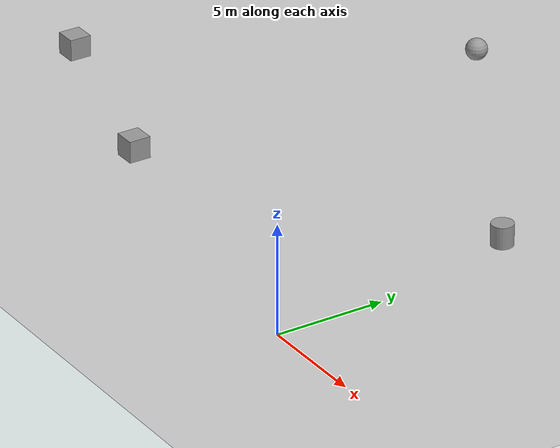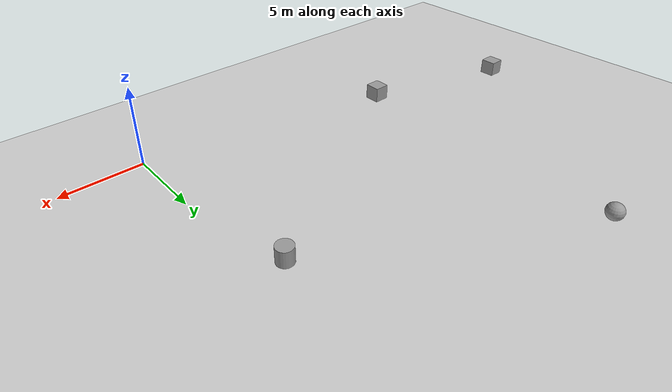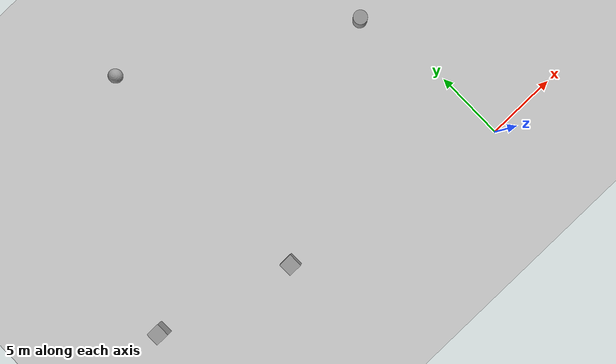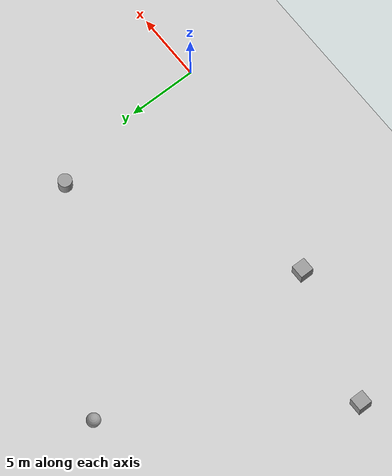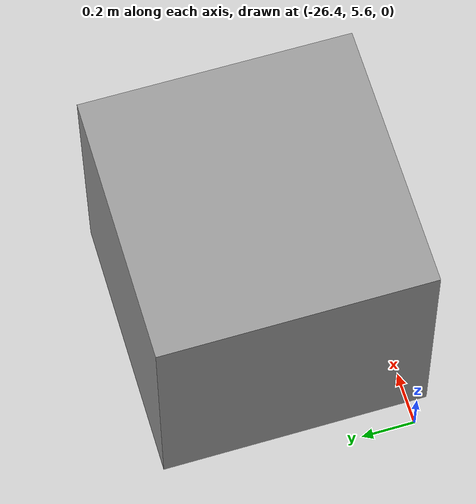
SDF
<sdf version="1.6">
 <world name="default">
  <light name="sun" type="directional">
   <pose>0 0 10 0 -0 0</pose>
   <diffuse>0.8 0.8 0.8 1</diffuse>
   <specular>0.2 0.2 0.2 1</specular>
   <attenuation>
    <range>1000</range>
    <constant>0.9</constant>
    <linear>0.01</linear>
    <quadratic>0.001</quadratic>
   </attenuation>
   <direction>-0.5 0.1 -0.9</direction>
  </light>
  <model name="ground_plane">
   <static>1</static>
   <link name="link">
    <collision name="collision">
     <geometry><plane><normal>0 0 1</normal><size>100 100</size></plane></geometry>
     <surface><friction><ode><mu>100</mu><mu2>50</mu2></ode></friction></surface>
    </collision>
    <visual name="visual">
     <cast_shadows>0</cast_shadows>
     <geometry><plane><normal>0 0 1</normal><size>100 100</size></plane></geometry>
     <material>
      <script><uri>file://media/materials/scripts/gazebo.material</uri><name>Gazebo/Grey</name></script>
     </material>
    </visual>
   </link>
  </model>
  <gravity>0 0 -9.8</gravity>
  <magnetic_field>6e-06 2.3e-05 -4.2e-05</magnetic_field>
  <atmosphere type="adiabatic"/>
  <physics name="default_physics" default="0" type="ode">
   <max_step_size>0.001</max_step_size>
   <real_time_factor>1</real_time_factor>
   <real_time_update_rate>1000</real_time_update_rate>
  </physics>
  <scene><ambient>0.4 0.4 0.4 1</ambient><background>0.7 0.7 0.7 1</background><shadows>1</shadows></scene>
  <spherical_coordinates>
   <surface_model>EARTH_WGS84</surface_model>
   <latitude_deg>0</latitude_deg>
   <longitude_deg>0</longitude_deg>
   <elevation>0</elevation>
   <heading_deg>0</heading_deg>
  </spherical_coordinates>
  <model name="unit_box">
   <pose>-25.8152 6.02644 0.499995 0 1e-05 0</pose>
   <link name="link">
    <inertial>
     <mass>1</mass>
     <inertia>
      <ixx>0.166667</ixx>
      <ixy>0</ixy>
      <ixz>0</ixz>
      <iyy>0.166667</iyy>
      <iyz>0</iyz>
      <izz>0.166667</izz>
     </inertia>
    </inertial>
    <collision name="collision"><geometry><box><size>1 1 1</size></box></geometry></collision>
    <visual name="visual">
     <geometry><box><size>1 1 1</size></box></geometry>
     <material>
      <script><name>Gazebo/Grey</name><uri>file://media/materials/scripts/gazebo.material</uri></script>
     </material>
    </visual>
   </link>
  </model>
  <model name="unit_box_0">
   <pose>-16.2269 3.20852 0.499995 -1e-05 0 0</pose>
   <link name="link">
    <inertial>
     <mass>1</mass>
     <inertia>
      <ixx>0.166667</ixx>
      <ixy>0</ixy>
      <ixz>0</ixz>
      <iyy>0.166667</iyy>
      <iyz>0</iyz>
      <izz>0.166667</izz>
     </inertia>
    </inertial>
    <collision name="collision"><geometry><box><size>1 1 1</size></box></geometry></collision>
    <visual name="visual">
     <geometry><box><size>1 1 1</size></box></geometry>
     <material>
      <script><name>Gazebo/Grey</name><uri>file://media/materials/scripts/gazebo.material</uri></script>
     </material>
    </visual>
   </link>
  </model>
  <model name="unit_sphere">
   <pose>-15.9072 20.5568 0.5 0 -0 0</pose>
   <link name="link">
    <inertial>
     <mass>1</mass>
     <inertia><ixx>0.1</ixx><ixy>0</ixy><ixz>0</ixz><iyy>0.1</iyy><iyz>0</iyz><izz>0.1</izz></inertia>
    </inertial>
    <collision name="collision"><geometry><sphere><radius>0.5</radius></sphere></geometry></collision>
    <visual name="visual">
     <geometry><sphere><radius>0.5</radius></sphere></geometry>
     <material>
      <script><name>Gazebo/Grey</name><uri>file://media/materials/scripts/gazebo.material</uri></script>
     </material>
    </visual>
   </link>
  </model>
  <model name="unit_cylinder">
   <pose>-1.3669 11.8659 0.499993 -3e-06 -3e-06 0</pose>
   <link name="link">
    <inertial>
     <mass>1</mass>
     <inertia><ixx>0.145833</ixx><ixy>0</ixy><ixz>0</ixz><iyy>0.145833</iyy><iyz>0</iyz><izz>0.125</izz></inertia>
    </inertial>
    <collision name="collision">
     <geometry><cylinder><radius>0.5</radius><length>1</length></cylinder></geometry>
    </collision>
    <visual name="visual">
     <geometry><cylinder><radius>0.5</radius><length>1</length></cylinder></geometry>
     <material>
      <script><name>Gazebo/Grey</name><uri>file://media/materials/scripts/gazebo.material</uri></script>
     </material>
    </visual>
   </link>
  </model>
 </world>
</sdf>
